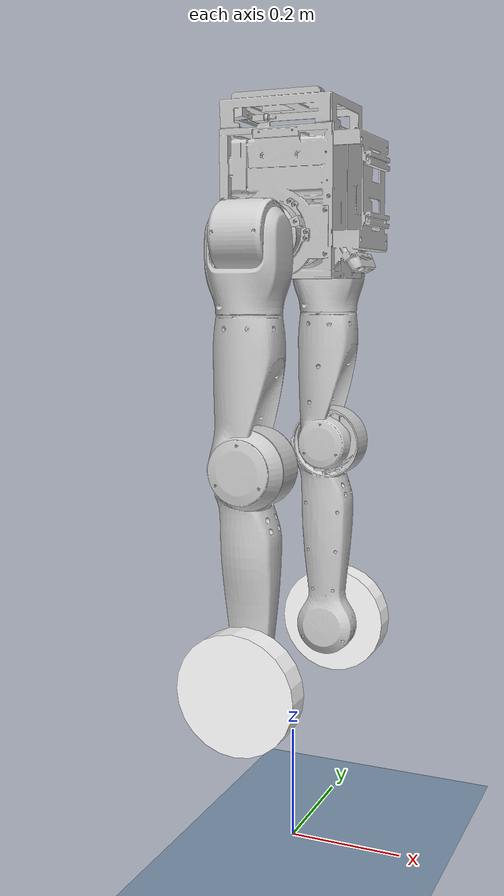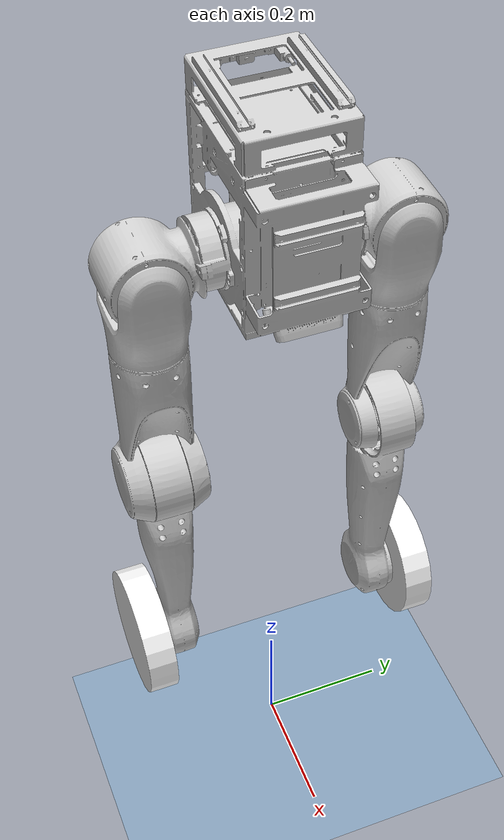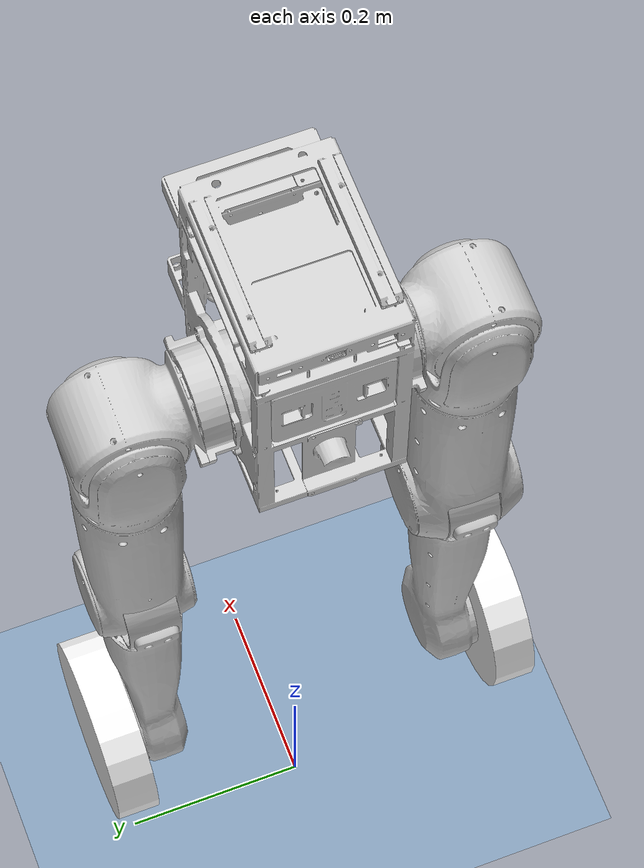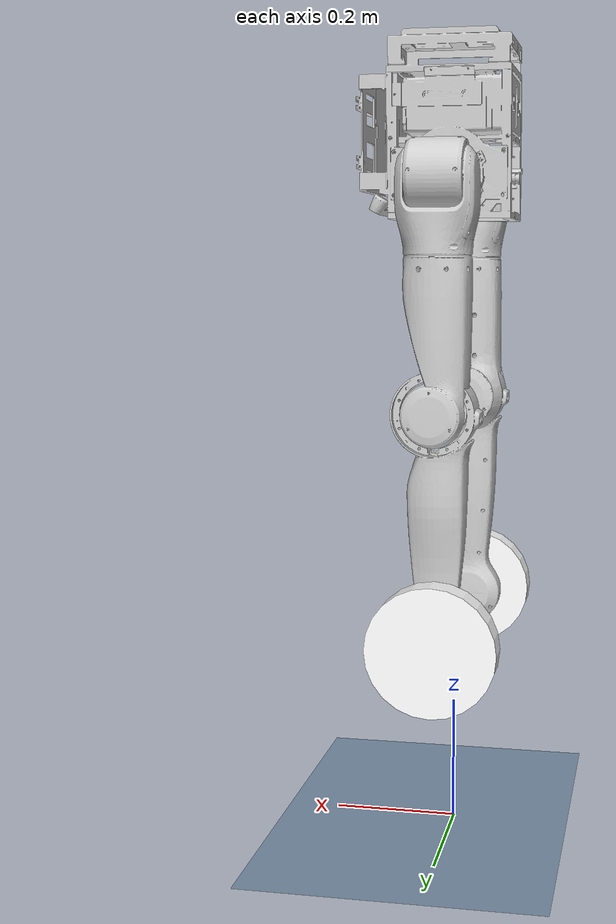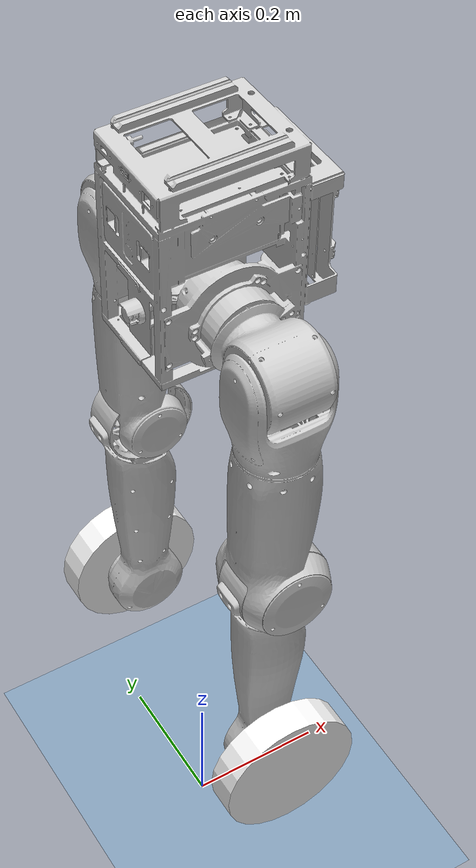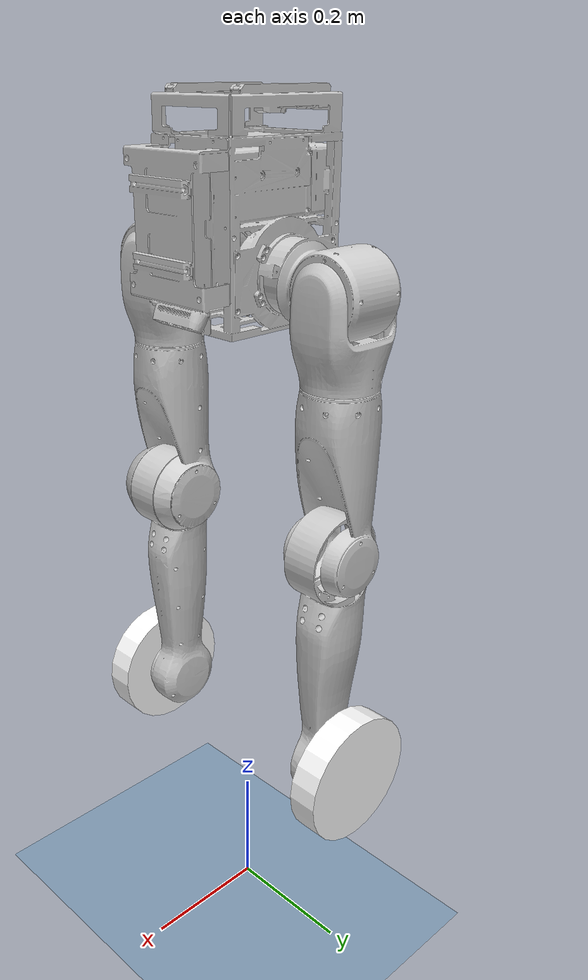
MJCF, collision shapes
<?xml version='1.0' encoding='UTF-8'?>
<mujoco model="bipedal_robot">
  <compiler angle="radian" meshdir="../meshes"/>
  <option timestep="0.001"/>
  <size njmax="5000" nconmax="1000"/>
  <default>
    <light castshadow="false" diffuse="1 1 1"/>
    <camera fovy="60"/>
    <default class="visual">
      <geom contype="0" conaffinity="0" group="1" type="mesh" density="0" rgba="0.8 0.8 0.8 1.0"/>
    </default>
    <default class="collision">
      <geom type="mesh" density="0" rgba="0.8 0.8 0.8 0.3"/>
    </default>
    <joint damping="0.01" margin="0.0001" solreflimit="0.002 1"/>
    <geom contype="1" conaffinity="1" friction="1.0 0.3 0.3" rgba="0.5 0.6 0.7 0.5" margin="0.001" group="0" solref="0.01 1"/>
    <equality solref="0.001 1"/>
  </default>
  <asset>
    <mesh name="base_Link" file="base_Link.STL"/>
    <mesh name="proximal_pitch_L_Link" file="proximal_pitch_L_Link.STL"/>
    <mesh name="proximal_roll_L_Link" file="proximal_roll_L_Link.STL"/>
    <mesh name="proximal_yaw_L_Link" file="proximal_yaw_L_Link.STL"/>
    <mesh name="knee_L_Link" file="knee_L_Link.STL"/>
    <mesh name="wheel_L_Link" file="wheel_L_Link.STL"/>
    <mesh name="proximal_pitch_R_Link" file="proximal_pitch_R_Link.STL"/>
    <mesh name="proximal_roll_R_Link" file="proximal_roll_R_Link.STL"/>
    <mesh name="proximal_yaw_R_Link" file="proximal_yaw_R_Link.STL"/>
    <mesh name="knee_R_Link" file="knee_R_Link.STL"/>
    <mesh name="wheel_R_Link" file="wheel_R_Link.STL"/>
    <texture name="texplane" type="2d" builtin="checker" rgb1="0.2 0.3 0.4" rgb2="0.1 0.15 0.2" width="100" height="100" />
    <material name="matplane" reflectance="0." texture="texplane" texrepeat="1 1" texuniform="true" />
  </asset>
  <worldbody>
    <light directional="true" diffuse="0.4 0.4 0.4" specular="0.1 0.1 0.1" pos="0 0 5.0" dir="0 0 -1" castshadow="false" />
    <light directional="true" diffuse="0.6 0.6 0.6" specular="0.2 0.2 0.2" pos="0 0 4" dir="0 0 -1" castshadow="false" />
    <geom name="ground" type="plane" pos="0 0 0" size="100 100 0.001" quat="1 0 0 0" material="matplane" condim="3" conaffinity="15" />
    <camera name="track" mode="trackcom" pos="0 -2.3 1.6" xyaxes="1 0 0 0 0.707 0.707"/>

    <!-- base -->
    <body name="base_Link" pos="0.0 0.0 1.0">
      <inertial pos="-0.00205 -0.0001 0.11304" quat="0.696197 -0.130687 -0.132604 0.693287" mass="11.07" diaginertia="0.120931 0.107294 0.0860939"/>
      <joint type="free" stiffness="1e-09" damping="1e-08"/>
      <geom mesh="base_Link" class="visual"/>
      <geom mesh="base_Link" class="collision"/>
      <site name="base_imu" pos="0 0 0"/>

      <!-- proximal pitch L Link -->
      <body name="proximal_pitch_L_Link" pos="-0.00044 0.09178 0.05474">
        <inertial pos="-0.00522 0.06976 -0.00608" quat="0.749652 0.661722 -0.011603 0.00328095" mass="2.07" diaginertia="0.00415508 0.00333952 0.00291561"/>
        <joint name="proximal_pitch_L_Joint" pos="0 0 0" axis="0 0.996195 -0.0871554" range="-3.14159 2.60054" actuatorfrcrange="-150 150" armature="0.0685894"/>
        <geom mesh="proximal_pitch_L_Link" class="visual"/>
        <geom mesh="proximal_pitch_L_Link" class="collision"/>
        <body name="proximal_roll_L_Link" pos="-0.032 0.0758 -0.00663">
          <inertial pos="0.03124 0.00035 -0.08414" quat="0.700753 -0.0110253 -0.00230623 0.713315" mass="1.74" diaginertia="0.00545642 0.00476973 0.00305218"/>
          <joint name="proximal_roll_L_Joint" pos="0 0 0" axis="1 0 0" range="-0.261799 3.19395" actuatorfrcrange="-150 150" armature="0.0685894"/>
          <geom mesh="proximal_roll_L_Link" class="visual"/>
          <geom mesh="proximal_roll_L_Link" class="collision"/>
          <body name="proximal_yaw_L_Link" pos="0.032 0 -0.1374">
            <inertial pos="-0.00276 0.00164 -0.11148" quat="0.999924 0.0031357 -0.011803 -0.00159748" mass="1.56" diaginertia="0.015046 0.0143418 0.00375114"/>
            <joint name="proximal_yaw_L_Joint" pos="0 0 0" axis="0 0 1" range="-3.66519 1.48353" actuatorfrcrange="-60 60" armature="0.0169834"/>
            <geom mesh="proximal_yaw_L_Link" class="visual"/>
            <geom mesh="proximal_yaw_L_Link" class="collision"/>
            <body name="knee_L_Link" pos="0.004 0.032 -0.2126">
              <inertial pos="-0.00217 -0.02432 -0.13739" quat="0.704746 0.00841191 -0.0019474 0.709407" mass="4.42" diaginertia="0.106565 0.105297 0.00554554"/>
              <joint name="knee_L_Joint" pos="0 0 0" axis="0 1 0" range="-2.61799 0.261799" actuatorfrcrange="-150 150" armature="0.0685894"/>
              <geom mesh="knee_L_Link" class="visual"/>
              <geom mesh="knee_L_Link" class="collision"/>
              <body name="wheel_L_Link" pos="-0.004 0.013 -0.35">
                <inertial pos="0.00054 0.004 0.00034" quat="0.607252 0.362393 0.362282 0.607181" mass="0.75" diaginertia="0.00446439 0.0023624 0.00231131"/>
                <joint name="wheel_L_Joint" pos="0 0 0" axis="0 1 0" range="-1.74533e+06 1.74533e+06" actuatorfrcrange="-22 22" armature="0.0110718"/>
                <geom mesh="wheel_L_Link" class="visual"/>
                <geom size="0.1 0.0225" pos="0 0.003 0" quat="0.707107 0.707107 0 0" type="cylinder" rgba="1 1 1 1"/>
              </body>
            </body>
          </body>
        </body>
      </body>

      <!-- proximal pitch R Link -->
      <body name="proximal_pitch_R_Link" pos="-0.00044 -0.09178 0.05474">
        <inertial pos="-0.00522 -0.06976 -0.00608" quat="0.661722 0.749652 -0.00328095 0.011603" mass="2.07" diaginertia="0.00415508 0.00333952 0.00291561"/>
        <joint name="proximal_pitch_R_Joint" pos="0 0 0" axis="0 0.996195 0.0871554" range="-3.14159 2.60054" actuatorfrcrange="-150 150" armature="0.0685894"/>
        <geom mesh="proximal_pitch_R_Link" class="visual"/>
        <geom mesh="proximal_pitch_R_Link" class="collision"/>
        <body name="proximal_roll_R_Link" pos="-0.032 -0.0758 -0.00663">
          <inertial pos="0.03124 -0.00035 -0.08414" quat="0.713315 -0.00230623 -0.0110253 0.700753" mass="1.74" diaginertia="0.00545642 0.00476973 0.00305218"/>
          <joint name="proximal_roll_R_Joint" pos="0 0 0" axis="1 0 0" range="-3.19395 0.261799" actuatorfrcrange="-150 150" armature="0.0685894"/>
          <geom mesh="proximal_roll_R_Link" class="visual"/>
          <geom mesh="proximal_roll_R_Link" class="collision"/>
          <body name="proximal_yaw_R_Link" pos="0.032 0 -0.1374">
            <inertial pos="-0.00276 -0.00164 -0.11148" quat="0.999924 -0.0031357 -0.011803 0.00159748" mass="1.56" diaginertia="0.015046 0.0143418 0.00375114"/>
            <joint name="proximal_yaw_R_Joint" pos="0 0 0" axis="0 0 1" range="-1.48353 3.66519" actuatorfrcrange="-60 60" armature="0.0169834"/>
            <geom mesh="proximal_yaw_R_Link" class="visual"/>
            <geom mesh="proximal_yaw_R_Link" class="collision"/>
            <body name="knee_R_Link" pos="0.004 -0.032 -0.2126">
              <inertial pos="-0.00217 0.02432 -0.13739" quat="0.709407 -0.0019474 0.00841191 0.704746" mass="4.42" diaginertia="0.106565 0.105297 0.00554554"/>
              <joint name="knee_R_Joint" pos="0 0 0" axis="0 1 0" range="-2.61799 0.261799" actuatorfrcrange="-150 150" armature="0.0685894"/>
              <geom mesh="knee_R_Link" class="visual"/>
              <geom mesh="knee_R_Link" class="collision"/>
              <body name="wheel_R_Link" pos="-0.004 -0.013 -0.35">
                <inertial pos="0.00054 -0.004 0.00034" quat="0.607181 0.362282 0.362393 0.607252" mass="0.75" diaginertia="0.00446439 0.0023624 0.00231131"/>
                <joint name="wheel_R_Joint" pos="0 0 0" axis="0 1 0" range="-1.74533e+06 1.74533e+06" actuatorfrcrange="-22 22" armature="0.0110718"/>
                <geom mesh="wheel_R_Link" class="visual"/>
                <geom size="0.1 0.0225" pos="0 -0.003 0" quat="0.707107 0.707107 0 0" type="cylinder" rgba="1 1 1 1"/>
              </body>
            </body>
          </body>
        </body>
      </body>

      <!-- camera -->
      <body name="d435_Link" pos="0.0968 0.01759 -0.00409" quat="0.207918 0 0.978146 0">
        <inertial pos="0 0 0" mass="0.001" diaginertia="1e-07 1e-07 1e-07"/>
        <camera name="d435_depth" pos="0 0 0" quat="0 -0.707107 0.707107 0" fovy="70.840779"/>
        <body name="d435_optical_frame" pos="0 0 0" quat="0.5 -0.5 0.5 -0.5">
          <inertial pos="0 0 0" mass="0.001" diaginertia="1e-07 1e-07 1e-07"/>
        </body>
      </body>
    </body>
  </worldbody>
  <actuator>
    <motor name="proximal_pitch_L" joint="proximal_pitch_L_Joint" ctrllimited="true" ctrlrange="-150 150" gear="1"/>
    <motor name="proximal_roll_L" joint="proximal_roll_L_Joint" ctrllimited="true" ctrlrange="-150 150" gear="1"/>
    <motor name="proximal_yaw_L" joint="proximal_yaw_L_Joint" ctrllimited="true" ctrlrange="-60 60" gear="1"/>
    <motor name="knee_L" joint="knee_L_Joint" ctrllimited="true" ctrlrange="-150 150" gear="1"/>
    <motor name="wheel_L" joint="wheel_L_Joint" ctrllimited="true" ctrlrange="-22 22" gear="1"/>
    <motor name="proximal_pitch_R" joint="proximal_pitch_R_Joint" ctrllimited="true" ctrlrange="-150 150" gear="1"/>
    <motor name="proximal_roll_R" joint="proximal_roll_R_Joint" ctrllimited="true" ctrlrange="-150 150" gear="1"/>
    <motor name="proximal_yaw_R" joint="proximal_yaw_R_Joint" ctrllimited="true" ctrlrange="-60 60" gear="1"/>
    <motor name="knee_R" joint="knee_R_Joint" ctrllimited="true" ctrlrange="-150 150" gear="1"/>
    <motor name="wheel_R" joint="wheel_R_Joint" ctrllimited="true" ctrlrange="-22 22" gear="1"/>
  </actuator>
  <sensor>
    <framequat objtype="site" objname="base_imu" name="base_imu_quat"/>
    <gyro site="base_imu" name="base_imu_gyro"/>
    <accelerometer site="base_imu" name="base_imu_acc"/>

    <jointpos joint="proximal_pitch_L_Joint" name="proximal_pitch_L_pos"/>
    <jointpos joint="proximal_roll_L_Joint" name="proximal_roll_L_pos"/>
    <jointpos joint="proximal_yaw_L_Joint" name="proximal_yaw_L_pos"/>
    <jointpos joint="knee_L_Joint" name="knee_L_pos"/>
    <jointpos joint="wheel_L_Joint" name="wheel_L_pos"/>
    <jointpos joint="proximal_pitch_R_Joint" name="proximal_pitch_R_pos"/>
    <jointpos joint="proximal_roll_R_Joint" name="proximal_roll_R_pos"/>
    <jointpos joint="proximal_yaw_R_Joint" name="proximal_yaw_R_pos"/>
    <jointpos joint="knee_R_Joint" name="knee_R_pos"/>
    <jointpos joint="wheel_R_Joint" name="wheel_R_pos"/>

    <jointvel joint="proximal_pitch_L_Joint" name="proximal_pitch_L_vel"/>
    <jointvel joint="proximal_roll_L_Joint" name="proximal_roll_L_vel"/>
    <jointvel joint="proximal_yaw_L_Joint" name="proximal_yaw_L_vel"/>
    <jointvel joint="knee_L_Joint" name="knee_L_vel"/>
    <jointvel joint="wheel_L_Joint" name="wheel_L_vel"/>
    <jointvel joint="proximal_pitch_R_Joint" name="proximal_pitch_R_vel"/>
    <jointvel joint="proximal_roll_R_Joint" name="proximal_roll_R_vel"/>
    <jointvel joint="proximal_yaw_R_Joint" name="proximal_yaw_R_vel"/>
    <jointvel joint="knee_R_Joint" name="knee_R_vel"/>
    <jointvel joint="wheel_R_Joint" name="wheel_R_vel"/>

    <jointactuatorfrc joint="proximal_pitch_L_Joint" name="proximal_pitch_L_frc"/>
    <jointactuatorfrc joint="proximal_roll_L_Joint" name="proximal_roll_L_frc"/>
    <jointactuatorfrc joint="proximal_yaw_L_Joint" name="proximal_yaw_L_frc"/>
    <jointactuatorfrc joint="knee_L_Joint" name="knee_L_frc"/>
    <jointactuatorfrc joint="wheel_L_Joint" name="wheel_L_frc"/>
    <jointactuatorfrc joint="proximal_pitch_R_Joint" name="proximal_pitch_R_frc"/>
    <jointactuatorfrc joint="proximal_roll_R_Joint" name="proximal_roll_R_frc"/>
    <jointactuatorfrc joint="proximal_yaw_R_Joint" name="proximal_yaw_R_frc"/>
    <jointactuatorfrc joint="knee_R_Joint" name="knee_R_frc"/>
    <jointactuatorfrc joint="wheel_R_Joint" name="wheel_R_frc"/>
  </sensor>
</mujoco>
